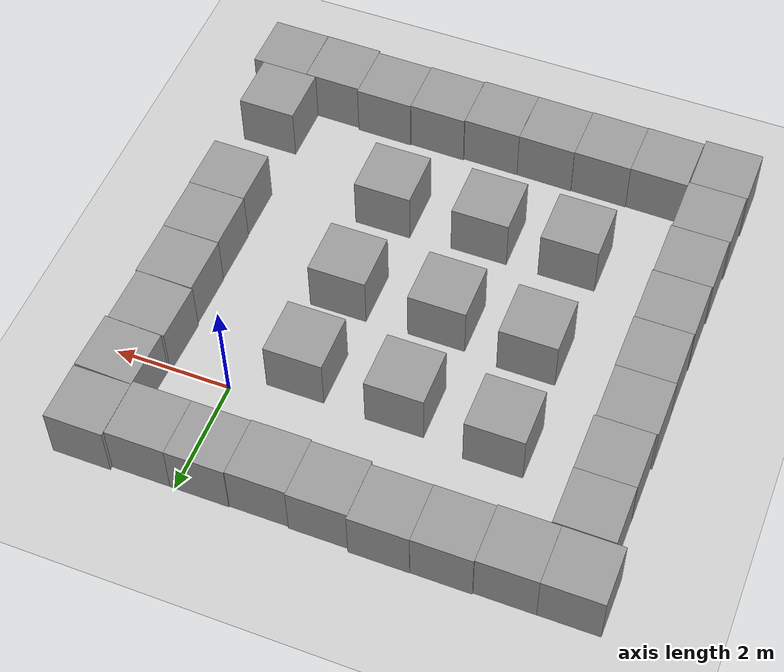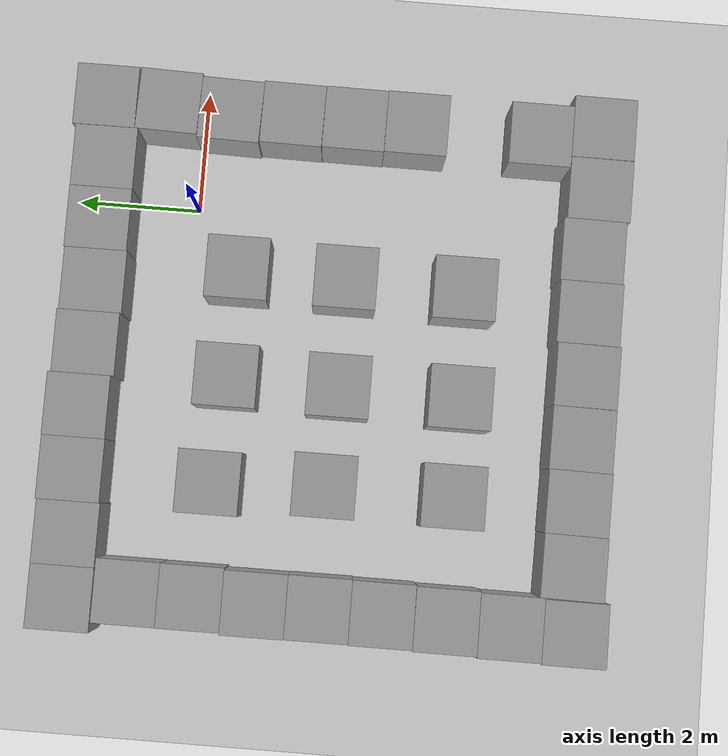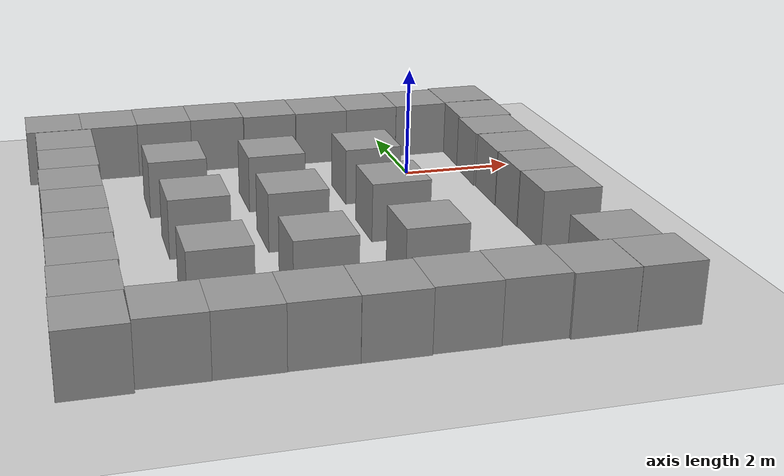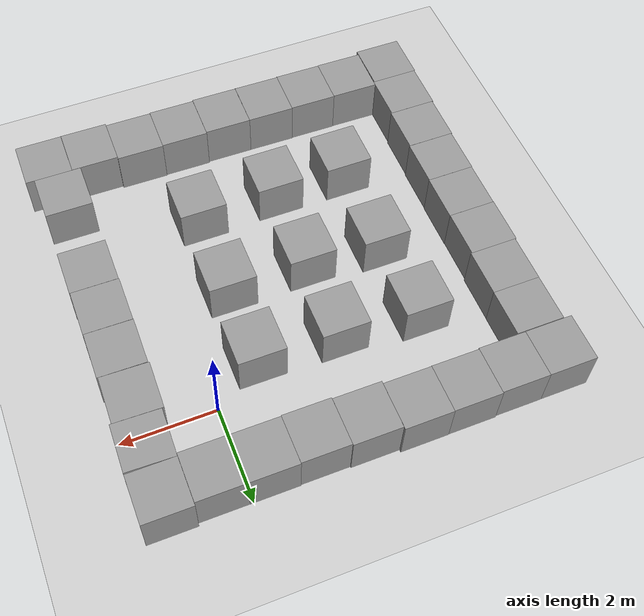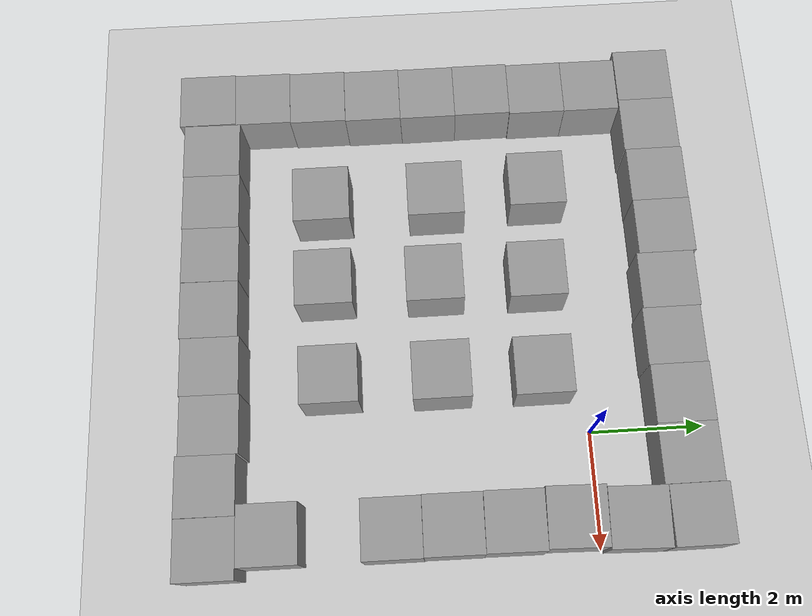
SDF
<sdf version="1.6">
 <world name="default">
  <light name="sun" type="directional">
   <pose>0 0 10 0 -0 0</pose>
   <diffuse>0.8 0.8 0.8 1</diffuse>
   <specular>0.1 0.1 0.1 1</specular>
   <attenuation>
    <range>1000</range>
    <constant>0.9</constant>
    <linear>0.01</linear>
    <quadratic>0.001</quadratic>
   </attenuation>
   <direction>-0.5 0.5 -1</direction>
  </light>
  <model name="ground_plane">
   <static>1</static>
   <link name="link">
    <collision name="collision">
     <geometry><plane><normal>0 0 1</normal><size>100 100</size></plane></geometry>
     <surface><friction><ode><mu>100</mu><mu2>50</mu2></ode></friction></surface>
    </collision>
    <visual name="visual">
     <cast_shadows>0</cast_shadows>
     <geometry><plane><normal>0 0 1</normal><size>100 100</size></plane></geometry>
     <material>
      <script><uri>file://media/materials/scripts/gazebo.material</uri><name>Gazebo/Grey</name></script>
     </material>
    </visual>
   </link>
  </model>
  <gravity>0 0 -9.8</gravity>
  <magnetic_field>6e-06 2.3e-05 -4.2e-05</magnetic_field>
  <atmosphere type="adiabatic"/>
  <physics name="default_physics" default="0" type="ode">
   <max_step_size>0.001</max_step_size>
   <real_time_factor>1</real_time_factor>
   <real_time_update_rate>1000</real_time_update_rate>
  </physics>
  <scene><ambient>0.4 0.4 0.4 1</ambient><background>0.7 0.7 0.7 1</background><shadows>1</shadows></scene>
  <spherical_coordinates>
   <surface_model>EARTH_WGS84</surface_model>
   <latitude_deg>0</latitude_deg>
   <longitude_deg>0</longitude_deg>
   <elevation>0</elevation>
   <heading_deg>0</heading_deg>
  </spherical_coordinates>
  <model name="unit_box_0_10">
   <pose>-0.421879 1.49598 0.499995 -0 9e-06 0.00084</pose>
   <link name="link">
    <inertial>
     <mass>1</mass>
     <inertia>
      <ixx>0.166667</ixx>
      <ixy>0</ixy>
      <ixz>0</ixz>
      <iyy>0.166667</iyy>
      <iyz>0</iyz>
      <izz>0.166667</izz>
     </inertia>
    </inertial>
    <collision name="collision"><geometry><box><size>1 1 1</size></box></geometry></collision>
    <visual name="visual">
     <geometry><box><size>1 1 1</size></box></geometry>
     <material>
      <script><name>Gazebo/Grey</name><uri>file://media/materials/scripts/gazebo.material</uri></script>
     </material>
    </visual>
   </link>
  </model>
  <model name="unit_box_0_11">
   <pose>-1.42189 1.48094 0.499995 0 -1e-05 0.000861</pose>
   <link name="link">
    <inertial>
     <mass>1</mass>
     <inertia>
      <ixx>0.166667</ixx>
      <ixy>0</ixy>
      <ixz>0</ixz>
      <iyy>0.166667</iyy>
      <iyz>0</iyz>
      <izz>0.166667</izz>
     </inertia>
    </inertial>
    <collision name="collision"><geometry><box><size>1 1 1</size></box></geometry></collision>
    <visual name="visual">
     <geometry><box><size>1 1 1</size></box></geometry>
     <material>
      <script><name>Gazebo/Grey</name><uri>file://media/materials/scripts/gazebo.material</uri></script>
     </material>
    </visual>
   </link>
  </model>
  <model name="unit_box_0_12">
   <pose>0.578477 1.49486 0.499995 -1e-05 -0 0.000904</pose>
   <link name="link">
    <inertial>
     <mass>1</mass>
     <inertia>
      <ixx>0.166667</ixx>
      <ixy>0</ixy>
      <ixz>0</ixz>
      <iyy>0.166667</iyy>
      <iyz>0</iyz>
      <izz>0.166667</izz>
     </inertia>
    </inertial>
    <collision name="collision"><geometry><box><size>1 1 1</size></box></geometry></collision>
    <visual name="visual">
     <geometry><box><size>1 1 1</size></box></geometry>
     <material>
      <script><name>Gazebo/Grey</name><uri>file://media/materials/scripts/gazebo.material</uri></script>
     </material>
    </visual>
   </link>
  </model>
  <model name="unit_box_0_13">
   <pose>1.58058 1.55397 0.499995 -1e-05 0 7.7e-05</pose>
   <link name="link">
    <inertial>
     <mass>1</mass>
     <inertia>
      <ixx>0.166667</ixx>
      <ixy>0</ixy>
      <ixz>0</ixz>
      <iyy>0.166667</iyy>
      <iyz>0</iyz>
      <izz>0.166667</izz>
     </inertia>
    </inertial>
    <collision name="collision"><geometry><box><size>1 1 1</size></box></geometry></collision>
    <visual name="visual">
     <geometry><box><size>1 1 1</size></box></geometry>
     <material>
      <script><name>Gazebo/Grey</name><uri>file://media/materials/scripts/gazebo.material</uri></script>
     </material>
    </visual>
   </link>
  </model>
  <model name="unit_box_0_14">
   <pose>1.56772 0.539846 0.499995 -1e-05 -0 -0.028566</pose>
   <link name="link">
    <inertial>
     <mass>1</mass>
     <inertia>
      <ixx>0.166667</ixx>
      <ixy>0</ixy>
      <ixz>0</ixz>
      <iyy>0.166667</iyy>
      <iyz>0</iyz>
      <izz>0.166667</izz>
     </inertia>
    </inertial>
    <collision name="collision"><geometry><box><size>1 1 1</size></box></geometry></collision>
    <visual name="visual">
     <geometry><box><size>1 1 1</size></box></geometry>
     <material>
      <script><name>Gazebo/Grey</name><uri>file://media/materials/scripts/gazebo.material</uri></script>
     </material>
    </visual>
   </link>
  </model>
  <model name="unit_box_0_15">
   <pose>1.5008 -0.460718 0.499995 -1e-05 -0 -0.024448</pose>
   <link name="link">
    <inertial>
     <mass>1</mass>
     <inertia>
      <ixx>0.166667</ixx>
      <ixy>0</ixy>
      <ixz>0</ixz>
      <iyy>0.166667</iyy>
      <iyz>0</iyz>
      <izz>0.166667</izz>
     </inertia>
    </inertial>
    <collision name="collision"><geometry><box><size>1 1 1</size></box></geometry></collision>
    <visual name="visual">
     <geometry><box><size>1 1 1</size></box></geometry>
     <material>
      <script><name>Gazebo/Grey</name><uri>file://media/materials/scripts/gazebo.material</uri></script>
     </material>
    </visual>
   </link>
  </model>
  <model name="unit_box_0_16">
   <pose>1.50783 -1.46627 0.499995 1e-05 -0 -0.013703</pose>
   <link name="link">
    <inertial>
     <mass>1</mass>
     <inertia>
      <ixx>0.166667</ixx>
      <ixy>0</ixy>
      <ixz>0</ixz>
      <iyy>0.166667</iyy>
      <iyz>0</iyz>
      <izz>0.166667</izz>
     </inertia>
    </inertial>
    <collision name="collision"><geometry><box><size>1 1 1</size></box></geometry></collision>
    <visual name="visual">
     <geometry><box><size>1 1 1</size></box></geometry>
     <material>
      <script><name>Gazebo/Grey</name><uri>file://media/materials/scripts/gazebo.material</uri></script>
     </material>
    </visual>
   </link>
  </model>
  <model name="unit_box_0_17">
   <pose>1.50393 -2.46873 0.5 0 0 -0.008767</pose>
   <link name="link">
    <inertial>
     <mass>1</mass>
     <inertia>
      <ixx>0.166667</ixx>
      <ixy>0</ixy>
      <ixz>0</ixz>
      <iyy>0.166667</iyy>
      <iyz>0</iyz>
      <izz>0.166667</izz>
     </inertia>
    </inertial>
    <collision name="collision"><geometry><box><size>1 1 1</size></box></geometry></collision>
    <visual name="visual">
     <geometry><box><size>1 1 1</size></box></geometry>
     <material>
      <script><name>Gazebo/Grey</name><uri>file://media/materials/scripts/gazebo.material</uri></script>
     </material>
    </visual>
   </link>
  </model>
  <model name="unit_box_0_18">
   <pose>1.506 -3.46985 0.499995 0 1e-05 -0.006664</pose>
   <link name="link">
    <inertial>
     <mass>1</mass>
     <inertia>
      <ixx>0.166667</ixx>
      <ixy>0</ixy>
      <ixz>0</ixz>
      <iyy>0.166667</iyy>
      <iyz>0</iyz>
      <izz>0.166667</izz>
     </inertia>
    </inertial>
    <collision name="collision"><geometry><box><size>1 1 1</size></box></geometry></collision>
    <visual name="visual">
     <geometry><box><size>1 1 1</size></box></geometry>
     <material>
      <script><name>Gazebo/Grey</name><uri>file://media/materials/scripts/gazebo.material</uri></script>
     </material>
    </visual>
   </link>
  </model>
  <model name="unit_box_0_30">
   <pose>1.48426 -5.46986 0.499995 0 1e-05 -0.006967</pose>
   <link name="link">
    <inertial>
     <mass>1</mass>
     <inertia>
      <ixx>0.166667</ixx>
      <ixy>0</ixy>
      <ixz>0</ixz>
      <iyy>0.166667</iyy>
      <iyz>0</iyz>
      <izz>0.166667</izz>
     </inertia>
    </inertial>
    <collision name="collision"><geometry><box><size>1 1 1</size></box></geometry></collision>
    <visual name="visual">
     <geometry><box><size>1 1 1</size></box></geometry>
     <material>
      <script><name>Gazebo/Grey</name><uri>file://media/materials/scripts/gazebo.material</uri></script>
     </material>
    </visual>
   </link>
  </model>
  <model name="unit_box_0_31">
   <pose>1.66083 -6.47112 0.499995 -0 -1e-05 -0.006969</pose>
   <link name="link">
    <inertial>
     <mass>1</mass>
     <inertia>
      <ixx>0.166667</ixx>
      <ixy>0</ixy>
      <ixz>0</ixz>
      <iyy>0.166667</iyy>
      <iyz>0</iyz>
      <izz>0.166667</izz>
     </inertia>
    </inertial>
    <collision name="collision"><geometry><box><size>1 1 1</size></box></geometry></collision>
    <visual name="visual">
     <geometry><box><size>1 1 1</size></box></geometry>
     <material>
      <script><name>Gazebo/Grey</name><uri>file://media/materials/scripts/gazebo.material</uri></script>
     </material>
    </visual>
   </link>
  </model>
  <model name="unit_box_0_32">
   <pose>0.658489 -6.46631 0.499995 -0 1e-05 -0.011693</pose>
   <link name="link">
    <inertial>
     <mass>1</mass>
     <inertia>
      <ixx>0.166667</ixx>
      <ixy>0</ixy>
      <ixz>0</ixz>
      <iyy>0.166667</iyy>
      <iyz>0</iyz>
      <izz>0.166667</izz>
     </inertia>
    </inertial>
    <collision name="collision"><geometry><box><size>1 1 1</size></box></geometry></collision>
    <visual name="visual">
     <geometry><box><size>1 1 1</size></box></geometry>
     <material>
      <script><name>Gazebo/Grey</name><uri>file://media/materials/scripts/gazebo.material</uri></script>
     </material>
    </visual>
   </link>
  </model>
  <model name="unit_box_0_33">
   <pose>-0.340964 -6.41076 0.499995 -1e-05 -0 -0.011749</pose>
   <link name="link">
    <inertial>
     <mass>1</mass>
     <inertia>
      <ixx>0.166667</ixx>
      <ixy>0</ixy>
      <ixz>0</ixz>
      <iyy>0.166667</iyy>
      <iyz>0</iyz>
      <izz>0.166667</izz>
     </inertia>
    </inertial>
    <collision name="collision"><geometry><box><size>1 1 1</size></box></geometry></collision>
    <visual name="visual">
     <geometry><box><size>1 1 1</size></box></geometry>
     <material>
      <script><name>Gazebo/Grey</name><uri>file://media/materials/scripts/gazebo.material</uri></script>
     </material>
    </visual>
   </link>
  </model>
  <model name="unit_box_0_34">
   <pose>-1.34113 -6.41668 0.5 0 0 -0.011778</pose>
   <link name="link">
    <inertial>
     <mass>1</mass>
     <inertia>
      <ixx>0.166667</ixx>
      <ixy>0</ixy>
      <ixz>0</ixz>
      <iyy>0.166667</iyy>
      <iyz>0</iyz>
      <izz>0.166667</izz>
     </inertia>
    </inertial>
    <collision name="collision"><geometry><box><size>1 1 1</size></box></geometry></collision>
    <visual name="visual">
     <geometry><box><size>1 1 1</size></box></geometry>
     <material>
      <script><name>Gazebo/Grey</name><uri>file://media/materials/scripts/gazebo.material</uri></script>
     </material>
    </visual>
   </link>
  </model>
  <model name="unit_box_0_35">
   <pose>-2.34186 -6.43251 0.5 0 0 -0.01273</pose>
   <link name="link">
    <inertial>
     <mass>1</mass>
     <inertia>
      <ixx>0.166667</ixx>
      <ixy>0</ixy>
      <ixz>0</ixz>
      <iyy>0.166667</iyy>
      <iyz>0</iyz>
      <izz>0.166667</izz>
     </inertia>
    </inertial>
    <collision name="collision"><geometry><box><size>1 1 1</size></box></geometry></collision>
    <visual name="visual">
     <geometry><box><size>1 1 1</size></box></geometry>
     <material>
      <script><name>Gazebo/Grey</name><uri>file://media/materials/scripts/gazebo.material</uri></script>
     </material>
    </visual>
   </link>
  </model>
  <model name="unit_box_0_36">
   <pose>-3.34319 -6.42126 0.5 0 0 -0.015504</pose>
   <link name="link">
    <inertial>
     <mass>1</mass>
     <inertia>
      <ixx>0.166667</ixx>
      <ixy>0</ixy>
      <ixz>0</ixz>
      <iyy>0.166667</iyy>
      <iyz>0</iyz>
      <izz>0.166667</izz>
     </inertia>
    </inertial>
    <collision name="collision"><geometry><box><size>1 1 1</size></box></geometry></collision>
    <visual name="visual">
     <geometry><box><size>1 1 1</size></box></geometry>
     <material>
      <script><name>Gazebo/Grey</name><uri>file://media/materials/scripts/gazebo.material</uri></script>
     </material>
    </visual>
   </link>
  </model>
  <model name="unit_box_0_38">
   <pose>-4.34326 -6.41689 0.499995 0 -1e-05 -0.015524</pose>
   <link name="link">
    <inertial>
     <mass>1</mass>
     <inertia>
      <ixx>0.166667</ixx>
      <ixy>0</ixy>
      <ixz>0</ixz>
      <iyy>0.166667</iyy>
      <iyz>0</iyz>
      <izz>0.166667</izz>
     </inertia>
    </inertial>
    <collision name="collision"><geometry><box><size>1 1 1</size></box></geometry></collision>
    <visual name="visual">
     <geometry><box><size>1 1 1</size></box></geometry>
     <material>
      <script><name>Gazebo/Grey</name><uri>file://media/materials/scripts/gazebo.material</uri></script>
     </material>
    </visual>
   </link>
  </model>
  <model name="unit_box_0_39">
   <pose>-5.34328 -6.41025 0.499995 1e-05 -0 -0.015526</pose>
   <link name="link">
    <inertial>
     <mass>1</mass>
     <inertia>
      <ixx>0.166667</ixx>
      <ixy>0</ixy>
      <ixz>0</ixz>
      <iyy>0.166667</iyy>
      <iyz>0</iyz>
      <izz>0.166667</izz>
     </inertia>
    </inertial>
    <collision name="collision"><geometry><box><size>1 1 1</size></box></geometry></collision>
    <visual name="visual">
     <geometry><box><size>1 1 1</size></box></geometry>
     <material>
      <script><name>Gazebo/Grey</name><uri>file://media/materials/scripts/gazebo.material</uri></script>
     </material>
    </visual>
   </link>
  </model>
  <model name="unit_box_0_40">
   <pose>-6.35595 -6.48989 0.499995 0 -1e-05 -0.002435</pose>
   <link name="link">
    <inertial>
     <mass>1</mass>
     <inertia>
      <ixx>0.166667</ixx>
      <ixy>0</ixy>
      <ixz>0</ixz>
      <iyy>0.166667</iyy>
      <iyz>0</iyz>
      <izz>0.166667</izz>
     </inertia>
    </inertial>
    <collision name="collision"><geometry><box><size>1 1 1</size></box></geometry></collision>
    <visual name="visual">
     <geometry><box><size>1 1 1</size></box></geometry>
     <material>
      <script><name>Gazebo/Grey</name><uri>file://media/materials/scripts/gazebo.material</uri></script>
     </material>
    </visual>
   </link>
  </model>
  <model name="unit_box_0_41">
   <pose>-6.33563 -5.48992 0.499995 -0 1e-05 -0.002418</pose>
   <link name="link">
    <inertial>
     <mass>1</mass>
     <inertia>
      <ixx>0.166667</ixx>
      <ixy>0</ixy>
      <ixz>0</ixz>
      <iyy>0.166667</iyy>
      <iyz>0</iyz>
      <izz>0.166667</izz>
     </inertia>
    </inertial>
    <collision name="collision"><geometry><box><size>1 1 1</size></box></geometry></collision>
    <visual name="visual">
     <geometry><box><size>1 1 1</size></box></geometry>
     <material>
      <script><name>Gazebo/Grey</name><uri>file://media/materials/scripts/gazebo.material</uri></script>
     </material>
    </visual>
   </link>
  </model>
  <model name="unit_box_0_42">
   <pose>-6.31365 -4.48967 0.499995 0 1e-05 -0.001812</pose>
   <link name="link">
    <inertial>
     <mass>1</mass>
     <inertia>
      <ixx>0.166667</ixx>
      <ixy>0</ixy>
      <ixz>0</ixz>
      <iyy>0.166667</iyy>
      <iyz>0</iyz>
      <izz>0.166667</izz>
     </inertia>
    </inertial>
    <collision name="collision"><geometry><box><size>1 1 1</size></box></geometry></collision>
    <visual name="visual">
     <geometry><box><size>1 1 1</size></box></geometry>
     <material>
      <script><name>Gazebo/Grey</name><uri>file://media/materials/scripts/gazebo.material</uri></script>
     </material>
    </visual>
   </link>
  </model>
  <model name="unit_box_0_43">
   <pose>-6.29683 -3.48884 0.499995 -1e-05 -0 -0.000123</pose>
   <link name="link">
    <inertial>
     <mass>1</mass>
     <inertia>
      <ixx>0.166667</ixx>
      <ixy>0</ixy>
      <ixz>0</ixz>
      <iyy>0.166667</iyy>
      <iyz>0</iyz>
      <izz>0.166667</izz>
     </inertia>
    </inertial>
    <collision name="collision"><geometry><box><size>1 1 1</size></box></geometry></collision>
    <visual name="visual">
     <geometry><box><size>1 1 1</size></box></geometry>
     <material>
      <script><name>Gazebo/Grey</name><uri>file://media/materials/scripts/gazebo.material</uri></script>
     </material>
    </visual>
   </link>
  </model>
  <model name="unit_box_0_44">
   <pose>-6.28773 -2.48853 0.499995 9e-06 -0 0.00051</pose>
   <link name="link">
    <inertial>
     <mass>1</mass>
     <inertia>
      <ixx>0.166667</ixx>
      <ixy>0</ixy>
      <ixz>0</ixz>
      <iyy>0.166667</iyy>
      <iyz>0</iyz>
      <izz>0.166667</izz>
     </inertia>
    </inertial>
    <collision name="collision"><geometry><box><size>1 1 1</size></box></geometry></collision>
    <visual name="visual">
     <geometry><box><size>1 1 1</size></box></geometry>
     <material>
      <script><name>Gazebo/Grey</name><uri>file://media/materials/scripts/gazebo.material</uri></script>
     </material>
    </visual>
   </link>
  </model>
  <model name="unit_box_0_45">
   <pose>-6.29357 -1.48838 0.499995 -1e-05 -0 0.0008</pose>
   <link name="link">
    <inertial>
     <mass>1</mass>
     <inertia>
      <ixx>0.166667</ixx>
      <ixy>0</ixy>
      <ixz>0</ixz>
      <iyy>0.166667</iyy>
      <iyz>0</iyz>
      <izz>0.166667</izz>
     </inertia>
    </inertial>
    <collision name="collision"><geometry><box><size>1 1 1</size></box></geometry></collision>
    <visual name="visual">
     <geometry><box><size>1 1 1</size></box></geometry>
     <material>
      <script><name>Gazebo/Grey</name><uri>file://media/materials/scripts/gazebo.material</uri></script>
     </material>
    </visual>
   </link>
  </model>
  <model name="unit_box_0_46">
   <pose>-6.26656 -0.488257 0.499995 -1e-05 -0 0.000993</pose>
   <link name="link">
    <inertial>
     <mass>1</mass>
     <inertia>
      <ixx>0.166667</ixx>
      <ixy>0</ixy>
      <ixz>0</ixz>
      <iyy>0.166667</iyy>
      <iyz>0</iyz>
      <izz>0.166667</izz>
     </inertia>
    </inertial>
    <collision name="collision"><geometry><box><size>1 1 1</size></box></geometry></collision>
    <visual name="visual">
     <geometry><box><size>1 1 1</size></box></geometry>
     <material>
      <script><name>Gazebo/Grey</name><uri>file://media/materials/scripts/gazebo.material</uri></script>
     </material>
    </visual>
   </link>
  </model>
  <model name="unit_box_0_47">
   <pose>-6.26408 0.511762 0.499995 1e-05 -0 0.001035</pose>
   <link name="link">
    <inertial>
     <mass>1</mass>
     <inertia>
      <ixx>0.166667</ixx>
      <ixy>0</ixy>
      <ixz>0</ixz>
      <iyy>0.166667</iyy>
      <iyz>0</iyz>
      <izz>0.166667</izz>
     </inertia>
    </inertial>
    <collision name="collision"><geometry><box><size>1 1 1</size></box></geometry></collision>
    <visual name="visual">
     <geometry><box><size>1 1 1</size></box></geometry>
     <material>
      <script><name>Gazebo/Grey</name><uri>file://media/materials/scripts/gazebo.material</uri></script>
     </material>
    </visual>
   </link>
  </model>
  <model name="unit_box_0_50">
   <pose>-6.42247 1.5235 0.499995 1e-05 -0 0.001221</pose>
   <link name="link">
    <inertial>
     <mass>1</mass>
     <inertia>
      <ixx>0.166667</ixx>
      <ixy>0</ixy>
      <ixz>0</ixz>
      <iyy>0.166667</iyy>
      <iyz>0</iyz>
      <izz>0.166667</izz>
     </inertia>
    </inertial>
    <collision name="collision"><geometry><box><size>1 1 1</size></box></geometry></collision>
    <visual name="visual">
     <geometry><box><size>1 1 1</size></box></geometry>
     <material>
      <script><name>Gazebo/Grey</name><uri>file://media/materials/scripts/gazebo.material</uri></script>
     </material>
    </visual>
   </link>
  </model>
  <model name="unit_box_0_51">
   <pose>-5.42247 1.52677 0.5 0 -0 0.001213</pose>
   <link name="link">
    <inertial>
     <mass>1</mass>
     <inertia>
      <ixx>0.166667</ixx>
      <ixy>0</ixy>
      <ixz>0</ixz>
      <iyy>0.166667</iyy>
      <iyz>0</iyz>
      <izz>0.166667</izz>
     </inertia>
    </inertial>
    <collision name="collision"><geometry><box><size>1 1 1</size></box></geometry></collision>
    <visual name="visual">
     <geometry><box><size>1 1 1</size></box></geometry>
     <material>
      <script><name>Gazebo/Grey</name><uri>file://media/materials/scripts/gazebo.material</uri></script>
     </material>
    </visual>
   </link>
  </model>
  <model name="unit_box_0_52">
   <pose>-4.4224 1.54835 0.499995 0 1e-05 0.001066</pose>
   <link name="link">
    <inertial>
     <mass>1</mass>
     <inertia>
      <ixx>0.166667</ixx>
      <ixy>0</ixy>
      <ixz>0</ixz>
      <iyy>0.166667</iyy>
      <iyz>0</iyz>
      <izz>0.166667</izz>
     </inertia>
    </inertial>
    <collision name="collision"><geometry><box><size>1 1 1</size></box></geometry></collision>
    <visual name="visual">
     <geometry><box><size>1 1 1</size></box></geometry>
     <material>
      <script><name>Gazebo/Grey</name><uri>file://media/materials/scripts/gazebo.material</uri></script>
     </material>
    </visual>
   </link>
  </model>
  <model name="unit_box_0_53">
   <pose>-3.42238 1.55507 0.5 0 -0 0.001023</pose>
   <link name="link">
    <inertial>
     <mass>1</mass>
     <inertia>
      <ixx>0.166667</ixx>
      <ixy>0</ixy>
      <ixz>0</ixz>
      <iyy>0.166667</iyy>
      <iyz>0</iyz>
      <izz>0.166667</izz>
     </inertia>
    </inertial>
    <collision name="collision"><geometry><box><size>1 1 1</size></box></geometry></collision>
    <visual name="visual">
     <geometry><box><size>1 1 1</size></box></geometry>
     <material>
      <script><name>Gazebo/Grey</name><uri>file://media/materials/scripts/gazebo.material</uri></script>
     </material>
    </visual>
   </link>
  </model>
  <model name="unit_box_0_54">
   <pose>-2.42204 1.50423 0.499995 -1e-05 0 0.000743</pose>
   <link name="link">
    <inertial>
     <mass>1</mass>
     <inertia>
      <ixx>0.166667</ixx>
      <ixy>0</ixy>
      <ixz>0</ixz>
      <iyy>0.166667</iyy>
      <iyz>0</iyz>
      <izz>0.166667</izz>
     </inertia>
    </inertial>
    <collision name="collision"><geometry><box><size>1 1 1</size></box></geometry></collision>
    <visual name="visual">
     <geometry><box><size>1 1 1</size></box></geometry>
     <material>
      <script><name>Gazebo/Grey</name><uri>file://media/materials/scripts/gazebo.material</uri></script>
     </material>
    </visual>
   </link>
  </model>
  <model name="unit_box_0_57">
   <pose>-1.09408 -4.42309 0.499995 -1e-05 0 0</pose>
   <link name="link">
    <inertial>
     <mass>1</mass>
     <inertia>
      <ixx>0.166667</ixx>
      <ixy>0</ixy>
      <ixz>0</ixz>
      <iyy>0.166667</iyy>
      <iyz>0</iyz>
      <izz>0.166667</izz>
     </inertia>
    </inertial>
    <collision name="collision"><geometry><box><size>1 1 1</size></box></geometry></collision>
    <visual name="visual">
     <geometry><box><size>1 1 1</size></box></geometry>
     <material>
      <script><name>Gazebo/Grey</name><uri>file://media/materials/scripts/gazebo.material</uri></script>
     </material>
    </visual>
   </link>
  </model>
  <model name="unit_box_0_63">
   <pose>-2.82761 -4.47187 0.499995 0 1e-05 0</pose>
   <link name="link">
    <inertial>
     <mass>1</mass>
     <inertia>
      <ixx>0.166667</ixx>
      <ixy>0</ixy>
      <ixz>0</ixz>
      <iyy>0.166667</iyy>
      <iyz>0</iyz>
      <izz>0.166667</izz>
     </inertia>
    </inertial>
    <collision name="collision"><geometry><box><size>1 1 1</size></box></geometry></collision>
    <visual name="visual">
     <geometry><box><size>1 1 1</size></box></geometry>
     <material>
      <script><name>Gazebo/Grey</name><uri>file://media/materials/scripts/gazebo.material</uri></script>
     </material>
    </visual>
   </link>
  </model>
  <model name="unit_box_0_64">
   <pose>-4.39021 -4.47171 0.499995 -1e-05 0 0</pose>
   <link name="link">
    <inertial>
     <mass>1</mass>
     <inertia>
      <ixx>0.166667</ixx>
      <ixy>0</ixy>
      <ixz>0</ixz>
      <iyy>0.166667</iyy>
      <iyz>0</iyz>
      <izz>0.166667</izz>
     </inertia>
    </inertial>
    <collision name="collision"><geometry><box><size>1 1 1</size></box></geometry></collision>
    <visual name="visual">
     <geometry><box><size>1 1 1</size></box></geometry>
     <material>
      <script><name>Gazebo/Grey</name><uri>file://media/materials/scripts/gazebo.material</uri></script>
     </material>
    </visual>
   </link>
  </model>
  <model name="unit_box_0_65">
   <pose>-1.06284 -2.51626 0.499995 -1e-05 0 0</pose>
   <link name="link">
    <inertial>
     <mass>1</mass>
     <inertia>
      <ixx>0.166667</ixx>
      <ixy>0</ixy>
      <ixz>0</ixz>
      <iyy>0.166667</iyy>
      <iyz>0</iyz>
      <izz>0.166667</izz>
     </inertia>
    </inertial>
    <collision name="collision"><geometry><box><size>1 1 1</size></box></geometry></collision>
    <visual name="visual">
     <geometry><box><size>1 1 1</size></box></geometry>
     <material>
      <script><name>Gazebo/Grey</name><uri>file://media/materials/scripts/gazebo.material</uri></script>
     </material>
    </visual>
   </link>
  </model>
  <model name="unit_box_0_66">
   <pose>-1.04079 -0.782537 0.499995 0 1e-05 0</pose>
   <link name="link">
    <inertial>
     <mass>1</mass>
     <inertia>
      <ixx>0.166667</ixx>
      <ixy>0</ixy>
      <ixz>0</ixz>
      <iyy>0.166667</iyy>
      <iyz>0</iyz>
      <izz>0.166667</izz>
     </inertia>
    </inertial>
    <collision name="collision"><geometry><box><size>1 1 1</size></box></geometry></collision>
    <visual name="visual">
     <geometry><box><size>1 1 1</size></box></geometry>
     <material>
      <script><name>Gazebo/Grey</name><uri>file://media/materials/scripts/gazebo.material</uri></script>
     </material>
    </visual>
   </link>
  </model>
  <model name="unit_box_0_67">
   <pose>-2.79242 -2.53791 0.499995 -1e-05 0 0</pose>
   <link name="link">
    <inertial>
     <mass>1</mass>
     <inertia>
      <ixx>0.166667</ixx>
      <ixy>0</ixy>
      <ixz>0</ixz>
      <iyy>0.166667</iyy>
      <iyz>0</iyz>
      <izz>0.166667</izz>
     </inertia>
    </inertial>
    <collision name="collision"><geometry><box><size>1 1 1</size></box></geometry></collision>
    <visual name="visual">
     <geometry><box><size>1 1 1</size></box></geometry>
     <material>
      <script><name>Gazebo/Grey</name><uri>file://media/materials/scripts/gazebo.material</uri></script>
     </material>
    </visual>
   </link>
  </model>
  <model name="unit_box_0_68">
   <pose>-2.76286 -0.746158 0.499995 0 1e-05 0</pose>
   <link name="link">
    <inertial>
     <mass>1</mass>
     <inertia>
      <ixx>0.166667</ixx>
      <ixy>0</ixy>
      <ixz>0</ixz>
      <iyy>0.166667</iyy>
      <iyz>0</iyz>
      <izz>0.166667</izz>
     </inertia>
    </inertial>
    <collision name="collision"><geometry><box><size>1 1 1</size></box></geometry></collision>
    <visual name="visual">
     <geometry><box><size>1 1 1</size></box></geometry>
     <material>
      <script><name>Gazebo/Grey</name><uri>file://media/materials/scripts/gazebo.material</uri></script>
     </material>
    </visual>
   </link>
  </model>
  <model name="unit_box_0_69">
   <pose>-4.37853 -2.43494 0.499995 -1e-05 0 0</pose>
   <link name="link">
    <inertial>
     <mass>1</mass>
     <inertia>
      <ixx>0.166667</ixx>
      <ixy>0</ixy>
      <ixz>0</ixz>
      <iyy>0.166667</iyy>
      <iyz>0</iyz>
      <izz>0.166667</izz>
     </inertia>
    </inertial>
    <collision name="collision"><geometry><box><size>1 1 1</size></box></geometry></collision>
    <visual name="visual">
     <geometry><box><size>1 1 1</size></box></geometry>
     <material>
      <script><name>Gazebo/Grey</name><uri>file://media/materials/scripts/gazebo.material</uri></script>
     </material>
    </visual>
   </link>
  </model>
  <model name="unit_box_0_70">
   <pose>-4.46647 -0.613822 0.5 0 -0 0</pose>
   <link name="link">
    <inertial>
     <mass>1</mass>
     <inertia>
      <ixx>0.166667</ixx>
      <ixy>0</ixy>
      <ixz>0</ixz>
      <iyy>0.166667</iyy>
      <iyz>0</iyz>
      <izz>0.166667</izz>
     </inertia>
    </inertial>
    <collision name="collision"><geometry><box><size>1 1 1</size></box></geometry></collision>
    <visual name="visual">
     <geometry><box><size>1 1 1</size></box></geometry>
     <material>
      <script><name>Gazebo/Grey</name><uri>file://media/materials/scripts/gazebo.material</uri></script>
     </material>
    </visual>
   </link>
  </model>
 </world>
</sdf>
